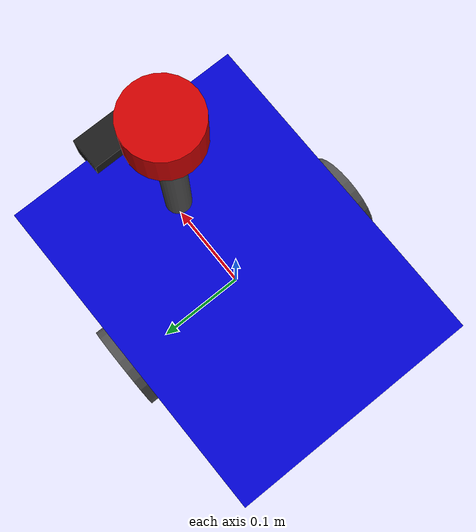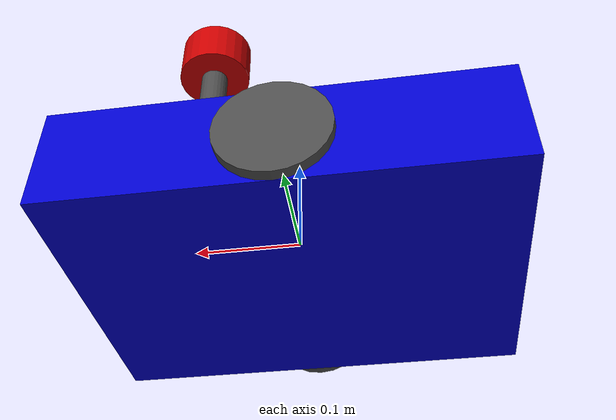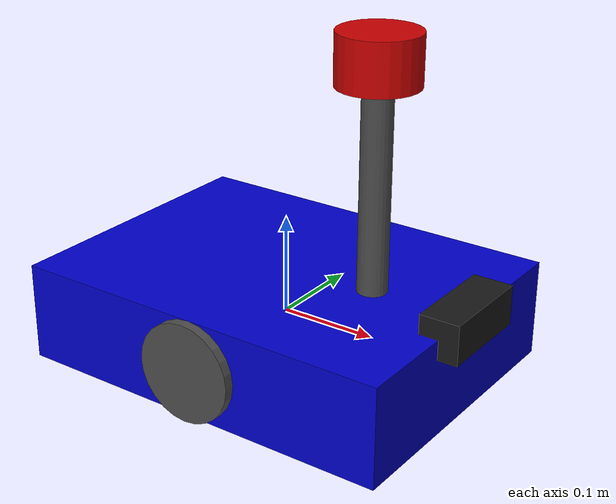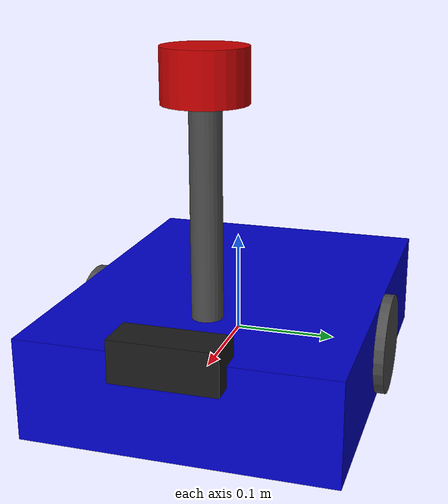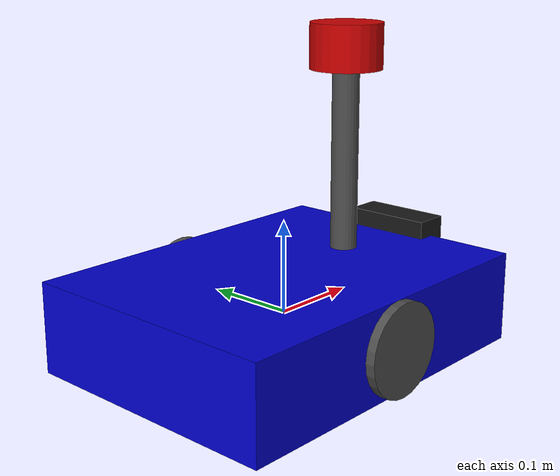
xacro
<?xml version="1.0"?>
<robot xmlns:xacro="http://www.ros.org/wiki/xacro" name="my_robot">

  <!-- ================= 宏定义 (Macros) ================= -->

  <!-- 惯性矩阵计算宏 (假设均匀圆柱体) -->
  <xacro:macro name="cylinder_inertia" params="mass radius length">
    <inertial>
      <mass value="${mass}" />
      <inertia
        ixx="${(1/12) * mass * (3*radius*radius + length*length)}"
        ixy="0.0" ixz="0.0"
        iyy="${(1/12) * mass * (3*radius*radius + length*length)}"
        iyz="0.0"
        izz="${(1/2) * mass * radius * radius}" />
    </inertial>
  </xacro:macro>

  <!-- 惯性矩阵计算宏 (假设均匀长方体) -->
  <xacro:macro name="box_inertia" params="mass x y z">
    <inertial>
      <mass value="${mass}" />
      <inertia
        ixx="${(1/12) * mass * (y*y + z*z)}"
        ixy="0.0" ixz="0.0"
        iyy="${(1/12) * mass * (x*x + z*z)}"
        iyz="0.0"
        izz="${(1/12) * mass * (x*x + y*y)}" />
    </inertial>
  </xacro:macro>

  <!-- 驱动轮宏 -->
  <xacro:macro name="drive_wheel" params="prefix reflect">
    <link name="${prefix}_wheel">
      <visual>
        <geometry>
          <cylinder radius="0.05" length="0.02" />
        </geometry>
        <material name="dark_grey" />
      </visual>
      <collision>
        <geometry>
          <cylinder radius="0.05" length="0.02" />
        </geometry>
      </collision>
      <xacro:cylinder_inertia mass="0.5" radius="0.05" length="0.02" />
    </link>

    <joint name="${prefix}_wheel_joint" type="continuous">
      <parent link="base_link" />
      <child link="${prefix}_wheel" />
      <origin xyz="0 ${reflect * 0.15} 0" rpy="${-pi/2} 0 0" />
      <axis xyz="0 0 1" />
      <dynamics damping="0.1" friction="0.1" />
    </joint>
  </xacro:macro>

  <!-- 万向轮宏 -->
  <xacro:macro name="caster_wheel" params="prefix x_offset">
    <link name="${prefix}_caster">
      <visual>
        <geometry>
          <sphere radius="0.03" />
        </geometry>
        <material name="black" />
      </visual>
      <collision>
        <geometry>
          <sphere radius="0.03" />
        </geometry>
      </collision>
      <inertial>
        <mass value="0.2" />
        <inertia
          ixx="${(2/5) * 0.2 * 0.03 * 0.03}" ixy="0.0" ixz="0.0"
          iyy="${(2/5) * 0.2 * 0.03 * 0.03}" iyz="0.0"
          izz="${(2/5) * 0.2 * 0.03 * 0.03}" />
      </inertial>
    </link>

    <joint name="${prefix}_caster_joint" type="fixed">
      <parent link="base_link" />
      <child link="${prefix}_caster" />
      <origin xyz="${x_offset} 0 -0.02" rpy="0 0 0" />
    </joint>
  </xacro:macro>

  <!-- ================= 材质定义 ================= -->
  <material name="blue"><color rgba="0.0 0.0 0.8 1.0" /></material>
  <material name="dark_grey"><color rgba="0.3 0.3 0.3 1.0" /></material>
  <material name="black"><color rgba="0.1 0.1 0.1 1.0" /></material>
  <material name="red"><color rgba="0.8 0.0 0.0 1.0" /></material>

  <!-- ================= 机器人本体 ================= -->

  <!-- 底盘 -->
  <link name="base_link">
    <visual>
      <geometry><box size="0.4 0.3 0.1" /></geometry>
      <material name="blue" />
    </visual>
    <collision>
      <geometry><box size="0.4 0.3 0.1" /></geometry>
    </collision>
    <xacro:box_inertia mass="5.0" x="0.4" y="0.3" z="0.1" />
  </link>

  <!-- 左右驱动轮 -->
  <xacro:drive_wheel prefix="left" reflect="1" />
  <xacro:drive_wheel prefix="right" reflect="-1" />

  <!-- 前后万向轮 -->
  <xacro:caster_wheel prefix="front" x_offset="0.15" />
  <xacro:caster_wheel prefix="rear" x_offset="-0.15" />

  <!-- 激光雷达支撑杆 -->
  <link name="lidar_pole">
    <visual>
      <geometry><cylinder radius="0.015" length="0.2" /></geometry>
      <material name="dark_grey" />
    </visual>
    <collision>
      <geometry><cylinder radius="0.015" length="0.2" /></geometry>
    </collision>
    <xacro:cylinder_inertia mass="0.2" radius="0.015" length="0.2" />
  </link>
  <joint name="lidar_pole_joint" type="fixed">
    <parent link="base_link" /><child link="lidar_pole" />
    <origin xyz="0.1 0 0.15" rpy="0 0 0" />
  </joint>

  <!-- 激光雷达传感器 -->
  <link name="lidar_link">
    <visual>
      <geometry><cylinder radius="0.04" length="0.05" /></geometry>
      <material name="red" />
    </visual>
    <collision>
      <geometry><cylinder radius="0.04" length="0.05" /></geometry>
    </collision>
    <xacro:cylinder_inertia mass="0.3" radius="0.04" length="0.05" />
  </link>
  <joint name="lidar_joint" type="fixed">
    <parent link="lidar_pole" /><child link="lidar_link" />
    <origin xyz="0 0 0.125" rpy="0 0 0" />
  </joint>

  <!-- 相机传感器 -->
  <link name="camera_link">
    <visual>
      <geometry><box size="0.04 0.1 0.04" /></geometry>
      <material name="black" />
    </visual>
    <collision>
      <geometry><box size="0.04 0.1 0.04" /></geometry>
    </collision>
    <xacro:box_inertia mass="0.15" x="0.04" y="0.1" z="0.04" />
  </link>
  <joint name="camera_joint" type="fixed">
    <parent link="base_link" /><child link="camera_link" />
    <origin xyz="0.2 0 0.05" rpy="0 0 0" />
  </joint>

  <!-- 相机光学坐标系 -->
  <link name="camera_link_optical" />
  <joint name="camera_optical_joint" type="fixed">
    <parent link="camera_link" /><child link="camera_link_optical" />
    <origin xyz="0 0 0" rpy="${-pi/2} 0 ${-pi/2}" />
  </joint>

  <!-- ================= Gazebo 扩展部分 (新增) ================= -->

  <!-- 1. 设置全局物理属性与颜色 -->
  <gazebo reference="base_link">
    <material>Gazebo/Blue</material>
  </gazebo>
  <gazebo reference="left_wheel">
    <material>Gazebo/DarkGrey</material>
    <mu1 value="1.0"/> <mu2 value="1.0"/>
  </gazebo>
  <gazebo reference="right_wheel">
    <material>Gazebo/DarkGrey</material>
    <mu1 value="1.0"/> <mu2 value="1.0"/>
  </gazebo>
  <gazebo reference="front_caster">
    <material>Gazebo/Black</material>
    <mu1 value="0.0"/> <mu2 value="0.0"/>
  </gazebo>
  <gazebo reference="rear_caster">
    <material>Gazebo/Black</material>
    <mu1 value="0.0"/> <mu2 value="0.0"/>
  </gazebo>
  <gazebo>
    <plugin name="diff_drive" filename="libgazebo_ros_diff_drive.so">
        <!-- 必须配置这个，否则机器人不知道听哪个话题 -->
        <commandTopic>cmd_vel</commandTopic>

        <!-- 确认左右轮关节名与你 URDF 中定义的完全一致 -->

    </plugin>
  </gazebo>

  <!-- 2. 差速驱动控制器插件 (让机器人动起来) -->
  <gazebo>
    <plugin name="diff_drive_controller" filename="libgazebo_ros_diff_drive.so">
      <ros>
        <namespace>/</namespace>
        <remapping>cmd_vel:=cmd_vel</remapping>
        <remapping>odom:=odom</remapping>
      </ros>
      <update_rate>30</update_rate>
      <left_joint>left_wheel_joint</left_joint>
      <right_joint>right_wheel_joint</right_joint>
      <wheel_separation>0.3</wheel_separation>
      <wheel_diameter>0.1</wheel_diameter>
      <max_wheel_torque>20</max_wheel_torque>
      <max_wheel_acceleration>1.0</max_wheel_acceleration>
      <publish_odom>true</publish_odom>
      <publish_odom_tf>true</publish_odom_tf>
      <publish_wheel_tf>true</publish_wheel_tf>
      <odometry_frame>odom</odometry_frame>
      <robot_base_frame>base_link</robot_base_frame>
    </plugin>
  </gazebo>

  <!-- 3. 激光雷达插件 -->
  <gazebo reference="lidar_link">
    <sensor type="ray" name="head_hokuyo_sensor">
      <pose>0 0 0 0 0 0</pose>
      <visualize>false</visualize>
      <update_rate>40</update_rate>
      <ray>
        <scan>
          <horizontal>
            <samples>720</samples>
            <resolution>1</resolution>
            <min_angle>-3.14159</min_angle>
            <max_angle>3.14159</max_angle>
          </horizontal>
        </scan>
        <range>
          <min>0.10</min>
          <max>30.0</max>
          <resolution>0.01</resolution>
        </range>
        <noise>
          <type>gaussian</type>
          <mean>0.0</mean>
          <stddev>0.01</stddev>
        </noise>
      </ray>
      <plugin name="gazebo_ros_head_hokuyo_controller" filename="libgazebo_ros_ray_sensor.so">
        <ros>
          <remapping>~/out:=scan</remapping>
        </ros>
        <output_type>sensor_msgs/LaserScan</output_type>
        <frame_name>lidar_link</frame_name>
      </plugin>
    </sensor>
  </gazebo>

  <!-- 4. 相机插件 -->
  <gazebo reference="camera_link">
    <sensor type="camera" name="camera1">
      <update_rate>30.0</update_rate>
      <camera name="head">
        <horizontal_fov>1.3962634</horizontal_fov>
        <image>
          <width>800</width>
          <height>800</height>
          <format>R8G8B8</format>
        </image>
        <clip>
          <near>0.02</near>
          <far>300</far>
        </clip>
        <noise>
          <type>gaussian</type>
          <mean>0.0</mean>
          <stddev>0.007</stddev>
        </noise>
      </camera>
      <plugin name="camera_controller" filename="libgazebo_ros_camera.so">
        <always_on>true</always_on>
        <update_rate>0.0</update_rate>
        <camera_name>camera</camera_name>
        <image_topic_name>image_raw</image_topic_name>
        <camera_info_topic_name>camera_info</camera_info_topic_name>
        <frame_name>camera_link_optical</frame_name>
        <hack_baseline>0.07</hack_baseline>
      </plugin>
    </sensor>
  </gazebo>

</robot>
